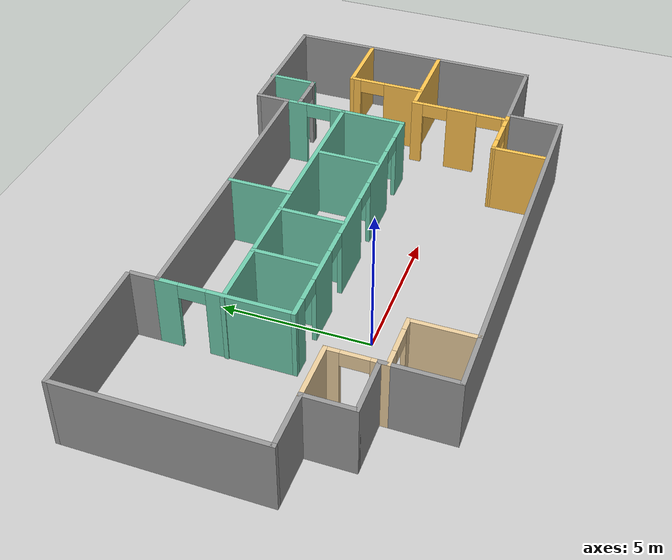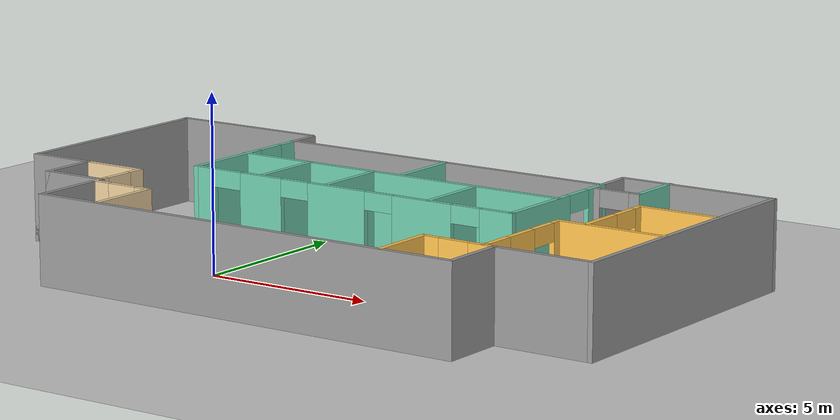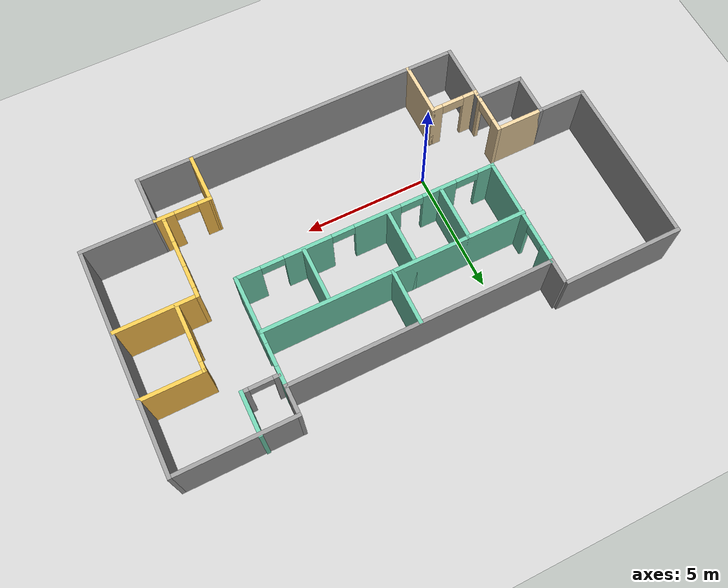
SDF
<sdf version="1.7">
 <world name="default">
  <model name="ground_plane">
   <static>1</static>
   <link name="link">
    <collision name="collision">
     <geometry><plane><normal>0 0 1</normal><size>100 100</size></plane></geometry>
     <surface>
      <contact><collide_bitmask>65535</collide_bitmask></contact>
      <friction><ode><mu>100</mu><mu2>50</mu2></ode></friction>
     </surface>
    </collision>
    <visual name="visual">
     <cast_shadows>0</cast_shadows>
     <geometry><plane><normal>0 0 1</normal><size>100 100</size></plane></geometry>
     <material>
      <script><uri>file://media/materials/scripts/gazebo.material</uri><name>Gazebo/Grey</name></script>
     </material>
    </visual>
   </link>
  </model>
  <model name="Building">
   <pose>3.19653 1.84983 0 0 -0 0</pose>
   <link name="Wall_0">
    <collision name="Wall_0_Collision">
     <geometry><box><size>4.75 0.15 2.5</size></box></geometry>
     <pose>0 0 1.25 0 -0 0</pose>
    </collision>
    <visual name="Wall_0_Visual">
     <pose>0 0 1.25 0 -0 0</pose>
     <geometry><box><size>4.75 0.15 2.5</size></box></geometry>
     <material>
      <script><uri>file://media/materials/scripts/gazebo.material</uri><name>Gazebo/Grey</name></script>
      <ambient>1 1 1 1</ambient>
     </material>
     <meta><layer>0</layer></meta>
    </visual>
    <pose>-7.525 5.17858 0 0 -0 3.14159</pose>
   </link>
   <link name="Wall_1">
    <collision name="Wall_1_Collision">
     <geometry><box><size>6.75 0.15 2.5</size></box></geometry>
     <pose>0 0 1.25 0 -0 0</pose>
    </collision>
    <visual name="Wall_1_Visual">
     <pose>0 0 1.25 0 -0 0</pose>
     <geometry><box><size>6.75 0.15 2.5</size></box></geometry>
     <material>
      <script><uri>file://media/materials/scripts/gazebo.material</uri><name>Gazebo/Grey</name></script>
      <ambient>1 1 1 1</ambient>
     </material>
     <meta><layer>0</layer></meta>
    </visual>
    <pose>-9.825 1.87858 0 0 -0 -1.5708</pose>
   </link>
   <link name="Wall_10">
    <collision name="Wall_10_Collision">
     <geometry><box><size>4.75 0.15 2.5</size></box></geometry>
     <pose>0 0 1.25 0 -0 0</pose>
    </collision>
    <visual name="Wall_10_Visual">
     <pose>0 0 1.25 0 -0 0</pose>
     <geometry><box><size>4.75 0.15 2.5</size></box></geometry>
     <material>
      <script><uri>file://media/materials/scripts/gazebo.material</uri><name>Gazebo/Grey</name></script>
      <ambient>1 1 1 1</ambient>
     </material>
     <meta><layer>0</layer></meta>
    </visual>
    <pose>7.525 5.32857 0 0 -0 3.14159</pose>
   </link>
   <link name="Wall_11">
    <collision name="Wall_11_Collision">
     <geometry><box><size>1.25 0.15 2.5</size></box></geometry>
     <pose>0 0 1.25 0 -0 0</pose>
    </collision>
    <visual name="Wall_11_Visual">
     <pose>0 0 1.25 0 -0 0</pose>
     <geometry><box><size>1.25 0.15 2.5</size></box></geometry>
     <material>
      <script><uri>file://media/materials/scripts/gazebo.material</uri><name>Gazebo/Grey</name></script>
      <ambient>1 1 1 1</ambient>
     </material>
     <meta><layer>0</layer></meta>
    </visual>
    <pose>5.225 4.77858 0 0 -0 -1.5708</pose>
   </link>
   <link name="Wall_15">
    <collision name="Wall_15_Collision">
     <geometry><box><size>10.5 0.15 2.5</size></box></geometry>
     <pose>0 0 1.25 0 -0 0</pose>
    </collision>
    <visual name="Wall_15_Visual">
     <pose>0 0 1.25 0 -0 0</pose>
     <geometry><box><size>10.5 0.15 2.5</size></box></geometry>
     <material>
      <script><uri>file://media/materials/scripts/gazebo.material</uri><name>Gazebo/Grey</name></script>
      <ambient>1 1 1 1</ambient>
     </material>
     <meta><layer>0</layer></meta>
    </visual>
    <pose>0.05 4.22858 0 0 -0 3.14159</pose>
   </link>
   <link name="Wall_18">
    <collision name="Wall_18_Collision">
     <geometry><box><size>2 0.15 2.5</size></box></geometry>
     <pose>0 0 1.25 0 -0 0</pose>
    </collision>
    <visual name="Wall_18_Visual">
     <pose>0 0 1.25 0 -0 0</pose>
     <geometry><box><size>2 0.15 2.5</size></box></geometry>
     <material>
      <script><uri>file://media/materials/scripts/gazebo.material</uri><name>Gazebo/Grey</name></script>
      <ambient>0.921569 0.807843 0.615686 1</ambient>
     </material>
     <meta><layer>0</layer></meta>
    </visual>
    <pose>-7.05 -1.42142 0 0 -0 0</pose>
   </link>
   <link name="Wall_19">
    <pose>-6.125 -2.34642 0 0 -0 -1.5708</pose>
    <visual name="Wall_19_Visual_0">
     <pose>-0.740197 0 1.25 0 -0 0</pose>
     <geometry><box><size>0.519606 0.15 2.5</size></box></geometry>
     <material>
      <script><uri>file://media/materials/scripts/gazebo.material</uri><name>Gazebo/Grey</name></script>
      <ambient>0.921569 0.807843 0.615686 1</ambient>
     </material>
     <meta><layer>0</layer></meta>
    </visual>
    <collision name="Wall_19_Collision_0">
     <geometry><box><size>0.519606 0.15 2.5</size></box></geometry>
     <pose>-0.740197 0 1.25 0 -0 0</pose>
    </collision>
    <visual name="Wall_19_Visual_1">
     <pose>0.709803 0 1.25 0 -0 0</pose>
     <geometry><box><size>0.580394 0.15 2.5</size></box></geometry>
     <material>
      <script><uri>file://media/materials/scripts/gazebo.material</uri><name>Gazebo/Grey</name></script>
      <ambient>0.921569 0.807843 0.615686 1</ambient>
     </material>
     <meta><layer>0</layer></meta>
    </visual>
    <collision name="Wall_19_Collision_1">
     <geometry><box><size>0.580394 0.15 2.5</size></box></geometry>
     <pose>0.709803 0 1.25 0 -0 0</pose>
    </collision>
    <visual name="Wall_19_Visual_2">
     <pose>-0.030394 0 2.25 0 -0 0</pose>
     <geometry><box><size>0.9 0.15 0.5</size></box></geometry>
     <material>
      <script><uri>file://media/materials/scripts/gazebo.material</uri><name>Gazebo/Grey</name></script>
      <ambient>0.921569 0.807843 0.615686 1</ambient>
     </material>
     <meta><layer>0</layer></meta>
    </visual>
    <collision name="Wall_19_Collision_2">
     <geometry><box><size>0.9 0.15 0.5</size></box></geometry>
     <pose>-0.030394 0 2.25 0 -0 0</pose>
    </collision>
   </link>
   <link name="Wall_2">
    <collision name="Wall_2_Collision">
     <geometry><box><size>2 0.15 2.5</size></box></geometry>
     <pose>0 0 1.25 0 -0 0</pose>
    </collision>
    <visual name="Wall_2_Visual">
     <pose>0 0 1.25 0 -0 0</pose>
     <geometry><box><size>2 0.15 2.5</size></box></geometry>
     <material>
      <script><uri>file://media/materials/scripts/gazebo.material</uri><name>Gazebo/Grey</name></script>
      <ambient>1 1 1 1</ambient>
     </material>
     <meta><layer>0</layer></meta>
    </visual>
    <pose>-8.9 -1.42142 0 0 -0 0</pose>
   </link>
   <link name="Wall_20">
    <pose>-5.2 -3.27142 0 0 -0 0</pose>
    <visual name="Wall_20_Visual_0">
     <pose>-0.691615 0 1.25 0 -0 0</pose>
     <geometry><box><size>0.616771 0.15 2.5</size></box></geometry>
     <material>
      <script><uri>file://media/materials/scripts/gazebo.material</uri><name>Gazebo/Grey</name></script>
      <ambient>0.921569 0.807843 0.615686 1</ambient>
     </material>
     <meta><layer>0</layer></meta>
    </visual>
    <collision name="Wall_20_Collision_0">
     <geometry><box><size>0.616771 0.15 2.5</size></box></geometry>
     <pose>-0.691615 0 1.25 0 -0 0</pose>
    </collision>
    <visual name="Wall_20_Visual_1">
     <pose>0.758385 0 1.25 0 -0 0</pose>
     <geometry><box><size>0.483229 0.15 2.5</size></box></geometry>
     <material>
      <script><uri>file://media/materials/scripts/gazebo.material</uri><name>Gazebo/Grey</name></script>
      <ambient>0.921569 0.807843 0.615686 1</ambient>
     </material>
     <meta><layer>0</layer></meta>
    </visual>
    <collision name="Wall_20_Collision_1">
     <geometry><box><size>0.483229 0.15 2.5</size></box></geometry>
     <pose>0.758385 0 1.25 0 -0 0</pose>
    </collision>
    <visual name="Wall_20_Visual_2">
     <pose>0.066771 0 2.25 0 -0 0</pose>
     <geometry><box><size>0.9 0.15 0.5</size></box></geometry>
     <material>
      <script><uri>file://media/materials/scripts/gazebo.material</uri><name>Gazebo/Grey</name></script>
      <ambient>0.921569 0.807843 0.615686 1</ambient>
     </material>
     <meta><layer>0</layer></meta>
    </visual>
    <collision name="Wall_20_Collision_2">
     <geometry><box><size>0.9 0.15 0.5</size></box></geometry>
     <pose>0.066771 0 2.25 0 -0 0</pose>
    </collision>
   </link>
   <link name="Wall_21">
    <collision name="Wall_21_Collision">
     <geometry><box><size>2.25 0.15 2.5</size></box></geometry>
     <pose>0 0 1.25 0 -0 0</pose>
    </collision>
    <visual name="Wall_21_Visual">
     <pose>0 0 1.25 0 -0 0</pose>
     <geometry><box><size>2.25 0.15 2.5</size></box></geometry>
     <material>
      <script><uri>file://media/materials/scripts/gazebo.material</uri><name>Gazebo/Grey</name></script>
      <ambient>0.921569 0.807843 0.615686 1</ambient>
     </material>
     <meta><layer>0</layer></meta>
    </visual>
    <pose>-4.275 -4.32142 0 0 -0 -1.5708</pose>
   </link>
   <link name="Wall_23">
    <collision name="Wall_23_Collision">
     <geometry><box><size>2 0.15 2.5</size></box></geometry>
     <pose>0 0 1.25 0 -0 0</pose>
    </collision>
    <visual name="Wall_23_Visual">
     <pose>0 0 1.25 0 -0 0</pose>
     <geometry><box><size>2 0.15 2.5</size></box></geometry>
     <material>
      <script><uri>file://media/materials/scripts/gazebo.material</uri><name>Gazebo/Grey</name></script>
      <ambient>1 0.764706 0.305882 1</ambient>
     </material>
     <meta><layer>0</layer></meta>
    </visual>
    <pose>4.83918 -4.41946 0 0 -0 1.5708</pose>
   </link>
   <link name="Wall_24">
    <pose>5.90709 -3.50794 0 0 -0 -0.012623</pose>
    <visual name="Wall_24_Visual_0">
     <pose>-0.856676 0 1.25 0 -0 0</pose>
     <geometry><box><size>0.572633 0.15 2.5</size></box></geometry>
     <material>
      <script><uri>file://media/materials/scripts/gazebo.material</uri><name>Gazebo/Grey</name></script>
      <ambient>1 0.764706 0.305882 1</ambient>
     </material>
     <meta><layer>0</layer></meta>
    </visual>
    <collision name="Wall_24_Collision_0">
     <geometry><box><size>0.572633 0.15 2.5</size></box></geometry>
     <pose>-0.856676 0 1.25 0 -0 0</pose>
    </collision>
    <visual name="Wall_24_Visual_1">
     <pose>0.736317 0 1.25 0 -0 0</pose>
     <geometry><box><size>0.813352 0.15 2.5</size></box></geometry>
     <material>
      <script><uri>file://media/materials/scripts/gazebo.material</uri><name>Gazebo/Grey</name></script>
      <ambient>1 0.764706 0.305882 1</ambient>
     </material>
     <meta><layer>0</layer></meta>
    </visual>
    <collision name="Wall_24_Collision_1">
     <geometry><box><size>0.813352 0.15 2.5</size></box></geometry>
     <pose>0.736317 0 1.25 0 -0 0</pose>
    </collision>
    <visual name="Wall_24_Visual_2">
     <pose>-0.120359 0 2.25 0 -0 0</pose>
     <geometry><box><size>0.9 0.15 0.5</size></box></geometry>
     <material>
      <script><uri>file://media/materials/scripts/gazebo.material</uri><name>Gazebo/Grey</name></script>
      <ambient>1 0.764706 0.305882 1</ambient>
     </material>
     <meta><layer>0</layer></meta>
    </visual>
    <collision name="Wall_24_Collision_2">
     <geometry><box><size>0.9 0.15 0.5</size></box></geometry>
     <pose>-0.120359 0 2.25 0 -0 0</pose>
    </collision>
   </link>
   <link name="Wall_26">
    <pose>6.6746 -1.80346 0 0 -0 1.5708</pose>
    <visual name="Wall_26_Visual_0">
     <pose>-1.64689 0 1.25 0 -0 0</pose>
     <geometry><box><size>0.206214 0.15 2.5</size></box></geometry>
     <material>
      <script><uri>file://media/materials/scripts/gazebo.material</uri><name>Gazebo/Grey</name></script>
      <ambient>1 0.764706 0.305882 1</ambient>
     </material>
     <meta><layer>0</layer></meta>
    </visual>
    <collision name="Wall_26_Collision_0">
     <geometry><box><size>0.206214 0.15 2.5</size></box></geometry>
     <pose>-1.64689 0 1.25 0 -0 0</pose>
    </collision>
    <visual name="Wall_26_Visual_1">
     <pose>-0.099603 0 1.25 0 -0 0</pose>
     <geometry><box><size>1.08837 0.15 2.5</size></box></geometry>
     <material>
      <script><uri>file://media/materials/scripts/gazebo.material</uri><name>Gazebo/Grey</name></script>
      <ambient>1 0.764706 0.305882 1</ambient>
     </material>
     <meta><layer>0</layer></meta>
    </visual>
    <collision name="Wall_26_Collision_1">
     <geometry><box><size>1.08837 0.15 2.5</size></box></geometry>
     <pose>-0.099603 0 1.25 0 -0 0</pose>
    </collision>
    <visual name="Wall_26_Visual_2">
     <pose>1.54729 0 1.25 0 -0 0</pose>
     <geometry><box><size>0.405421 0.15 2.5</size></box></geometry>
     <material>
      <script><uri>file://media/materials/scripts/gazebo.material</uri><name>Gazebo/Grey</name></script>
      <ambient>1 0.764706 0.305882 1</ambient>
     </material>
     <meta><layer>0</layer></meta>
    </visual>
    <collision name="Wall_26_Collision_2">
     <geometry><box><size>0.405421 0.15 2.5</size></box></geometry>
     <pose>1.54729 0 1.25 0 -0 0</pose>
    </collision>
    <visual name="Wall_26_Visual_3">
     <pose>-1.09379 0 2.25 0 -0 0</pose>
     <geometry><box><size>0.9 0.15 0.5</size></box></geometry>
     <material>
      <script><uri>file://media/materials/scripts/gazebo.material</uri><name>Gazebo/Grey</name></script>
      <ambient>1 0.764706 0.305882 1</ambient>
     </material>
     <meta><layer>0</layer></meta>
    </visual>
    <collision name="Wall_26_Collision_3">
     <geometry><box><size>0.9 0.15 0.5</size></box></geometry>
     <pose>-1.09379 0 2.25 0 -0 0</pose>
    </collision>
    <visual name="Wall_26_Visual_4">
     <pose>0.894579 0 2.25 0 -0 0</pose>
     <geometry><box><size>0.9 0.15 0.5</size></box></geometry>
     <material>
      <script><uri>file://media/materials/scripts/gazebo.material</uri><name>Gazebo/Grey</name></script>
      <ambient>1 0.764706 0.305882 1</ambient>
     </material>
     <meta><layer>0</layer></meta>
    </visual>
    <collision name="Wall_26_Collision_4">
     <geometry><box><size>0.9 0.15 0.5</size></box></geometry>
     <pose>0.894579 0 2.25 0 -0 0</pose>
    </collision>
   </link>
   <link name="Wall_27">
    <collision name="Wall_27_Collision">
     <geometry><box><size>3.25 0.15 2.5</size></box></geometry>
     <pose>0 0 1.25 0 -0 0</pose>
    </collision>
    <visual name="Wall_27_Visual">
     <pose>0 0 1.25 0 -0 0</pose>
     <geometry><box><size>3.25 0.15 2.5</size></box></geometry>
     <material>
      <script><uri>file://media/materials/scripts/gazebo.material</uri><name>Gazebo/Grey</name></script>
      <ambient>1 0.764706 0.305882 1</ambient>
     </material>
     <meta><layer>0</layer></meta>
    </visual>
    <pose>8.2246 -0.12846 0 0 -0 0</pose>
   </link>
   <link name="Wall_29">
    <pose>7.46995 1.21706 0 0 -0 1.5708</pose>
    <visual name="Wall_29_Visual_0">
     <pose>-0.660088 0 1.25 0 -0 0</pose>
     <geometry><box><size>1.42982 0.15 2.5</size></box></geometry>
     <material>
      <script><uri>file://media/materials/scripts/gazebo.material</uri><name>Gazebo/Grey</name></script>
      <ambient>1 0.764706 0.305882 1</ambient>
     </material>
     <meta><layer>0</layer></meta>
    </visual>
    <collision name="Wall_29_Collision_0">
     <geometry><box><size>1.42982 0.15 2.5</size></box></geometry>
     <pose>-0.660088 0 1.25 0 -0 0</pose>
    </collision>
    <visual name="Wall_29_Visual_1">
     <pose>1.16491 0 1.25 0 -0 0</pose>
     <geometry><box><size>0.420177 0.15 2.5</size></box></geometry>
     <material>
      <script><uri>file://media/materials/scripts/gazebo.material</uri><name>Gazebo/Grey</name></script>
      <ambient>1 0.764706 0.305882 1</ambient>
     </material>
     <meta><layer>0</layer></meta>
    </visual>
    <collision name="Wall_29_Collision_1">
     <geometry><box><size>0.420177 0.15 2.5</size></box></geometry>
     <pose>1.16491 0 1.25 0 -0 0</pose>
    </collision>
    <visual name="Wall_29_Visual_2">
     <pose>0.504823 0 2.25 0 -0 0</pose>
     <geometry><box><size>0.9 0.15 0.5</size></box></geometry>
     <material>
      <script><uri>file://media/materials/scripts/gazebo.material</uri><name>Gazebo/Grey</name></script>
      <ambient>1 0.764706 0.305882 1</ambient>
     </material>
     <meta><layer>0</layer></meta>
    </visual>
    <collision name="Wall_29_Collision_2">
     <geometry><box><size>0.9 0.15 0.5</size></box></geometry>
     <pose>0.504823 0 2.25 0 -0 0</pose>
    </collision>
   </link>
   <link name="Wall_3">
    <collision name="Wall_3_Collision">
     <geometry><box><size>1.75 0.15 2.5</size></box></geometry>
     <pose>0 0 1.25 0 -0 0</pose>
    </collision>
    <visual name="Wall_3_Visual">
     <pose>0 0 1.25 0 -0 0</pose>
     <geometry><box><size>1.75 0.15 2.5</size></box></geometry>
     <material>
      <script><uri>file://media/materials/scripts/gazebo.material</uri><name>Gazebo/Grey</name></script>
      <ambient>1 1 1 1</ambient>
     </material>
     <meta><layer>0</layer></meta>
    </visual>
    <pose>-7.975 -2.22142 0 0 -0 -1.5708</pose>
   </link>
   <link name="Wall_30">
    <collision name="Wall_30_Collision">
     <geometry><box><size>2.5 0.15 2.5</size></box></geometry>
     <pose>0 0 1.25 0 -0 0</pose>
    </collision>
    <visual name="Wall_30_Visual">
     <pose>0 0 1.25 0 -0 0</pose>
     <geometry><box><size>2.5 0.15 2.5</size></box></geometry>
     <material>
      <script><uri>file://media/materials/scripts/gazebo.material</uri><name>Gazebo/Grey</name></script>
      <ambient>1 0.764706 0.305882 1</ambient>
     </material>
     <meta><layer>0</layer></meta>
    </visual>
    <pose>8.64494 2.51706 0 0 -0 0</pose>
   </link>
   <link name="Wall_32">
    <pose>5.225 2.05357 0 0 -0 -1.5708</pose>
    <visual name="Wall_32_Visual_0">
     <pose>-1.82655 0 1.25 0 -0 0</pose>
     <geometry><box><size>0.846906 0.15 2.5</size></box></geometry>
     <material>
      <script><uri>file://media/materials/scripts/gazebo.material</uri><name>Gazebo/Grey</name></script>
      <ambient>0.435294 0.796078 0.67451 1</ambient>
     </material>
     <meta><layer>0</layer></meta>
    </visual>
    <collision name="Wall_32_Collision_0">
     <geometry><box><size>0.846906 0.15 2.5</size></box></geometry>
     <pose>-1.82655 0 1.25 0 -0 0</pose>
    </collision>
    <visual name="Wall_32_Visual_1">
     <pose>0.873453 0 1.25 0 -0 0</pose>
     <geometry><box><size>2.75309 0.15 2.5</size></box></geometry>
     <material>
      <script><uri>file://media/materials/scripts/gazebo.material</uri><name>Gazebo/Grey</name></script>
      <ambient>0.435294 0.796078 0.67451 1</ambient>
     </material>
     <meta><layer>0</layer></meta>
    </visual>
    <collision name="Wall_32_Collision_1">
     <geometry><box><size>2.75309 0.15 2.5</size></box></geometry>
     <pose>0.873453 0 1.25 0 -0 0</pose>
    </collision>
    <visual name="Wall_32_Visual_2">
     <pose>-0.953094 0 2.25 0 -0 0</pose>
     <geometry><box><size>0.9 0.15 0.5</size></box></geometry>
     <material>
      <script><uri>file://media/materials/scripts/gazebo.material</uri><name>Gazebo/Grey</name></script>
      <ambient>0.435294 0.796078 0.67451 1</ambient>
     </material>
     <meta><layer>0</layer></meta>
    </visual>
    <collision name="Wall_32_Collision_2">
     <geometry><box><size>0.9 0.15 0.5</size></box></geometry>
     <pose>-0.953094 0 2.25 0 -0 0</pose>
    </collision>
   </link>
   <link name="Wall_33">
    <pose>0.05 -0.121425 0 0 -0 3.14159</pose>
    <visual name="Wall_33_Visual_0">
     <pose>-4.73985 0 1.25 0 -0 0</pose>
     <geometry><box><size>1.02029 0.15 2.5</size></box></geometry>
     <material>
      <script><uri>file://media/materials/scripts/gazebo.material</uri><name>Gazebo/Grey</name></script>
      <ambient>0.435294 0.796078 0.67451 1</ambient>
     </material>
     <meta><layer>0</layer></meta>
    </visual>
    <collision name="Wall_33_Collision_0">
     <geometry><box><size>1.02029 0.15 2.5</size></box></geometry>
     <pose>-4.73985 0 1.25 0 -0 0</pose>
    </collision>
    <visual name="Wall_33_Visual_1">
     <pose>-2.38785 0 1.25 0 -0 0</pose>
     <geometry><box><size>1.88371 0.15 2.5</size></box></geometry>
     <material>
      <script><uri>file://media/materials/scripts/gazebo.material</uri><name>Gazebo/Grey</name></script>
      <ambient>0.435294 0.796078 0.67451 1</ambient>
     </material>
     <meta><layer>0</layer></meta>
    </visual>
    <collision name="Wall_33_Collision_1">
     <geometry><box><size>1.88371 0.15 2.5</size></box></geometry>
     <pose>-2.38785 0 1.25 0 -0 0</pose>
    </collision>
    <visual name="Wall_33_Visual_2">
     <pose>0.395859 0 1.25 0 -0 0</pose>
     <geometry><box><size>1.88371 0.15 2.5</size></box></geometry>
     <material>
      <script><uri>file://media/materials/scripts/gazebo.material</uri><name>Gazebo/Grey</name></script>
      <ambient>0.435294 0.796078 0.67451 1</ambient>
     </material>
     <meta><layer>0</layer></meta>
    </visual>
    <collision name="Wall_33_Collision_2">
     <geometry><box><size>1.88371 0.15 2.5</size></box></geometry>
     <pose>0.395859 0 1.25 0 -0 0</pose>
    </collision>
    <visual name="Wall_33_Visual_3">
     <pose>2.93485 0 1.25 0 -0 0</pose>
     <geometry><box><size>1.39427 0.15 2.5</size></box></geometry>
     <material>
      <script><uri>file://media/materials/scripts/gazebo.material</uri><name>Gazebo/Grey</name></script>
      <ambient>0.435294 0.796078 0.67451 1</ambient>
     </material>
     <meta><layer>0</layer></meta>
    </visual>
    <collision name="Wall_33_Collision_3">
     <geometry><box><size>1.39427 0.15 2.5</size></box></geometry>
     <pose>2.93485 0 1.25 0 -0 0</pose>
    </collision>
    <visual name="Wall_33_Visual_4">
     <pose>4.89099 0 1.25 0 -0 0</pose>
     <geometry><box><size>0.718019 0.15 2.5</size></box></geometry>
     <material>
      <script><uri>file://media/materials/scripts/gazebo.material</uri><name>Gazebo/Grey</name></script>
      <ambient>0.435294 0.796078 0.67451 1</ambient>
     </material>
     <meta><layer>0</layer></meta>
    </visual>
    <collision name="Wall_33_Collision_4">
     <geometry><box><size>0.718019 0.15 2.5</size></box></geometry>
     <pose>4.89099 0 1.25 0 -0 0</pose>
    </collision>
    <visual name="Wall_33_Visual_5">
     <pose>-3.77971 0 2.25 0 -0 0</pose>
     <geometry><box><size>0.9 0.15 0.5</size></box></geometry>
     <material>
      <script><uri>file://media/materials/scripts/gazebo.material</uri><name>Gazebo/Grey</name></script>
      <ambient>0.435294 0.796078 0.67451 1</ambient>
     </material>
     <meta><layer>0</layer></meta>
    </visual>
    <collision name="Wall_33_Collision_5">
     <geometry><box><size>0.9 0.15 0.5</size></box></geometry>
     <pose>-3.77971 0 2.25 0 -0 0</pose>
    </collision>
    <visual name="Wall_33_Visual_6">
     <pose>-0.995997 0 2.25 0 -0 0</pose>
     <geometry><box><size>0.9 0.15 0.5</size></box></geometry>
     <material>
      <script><uri>file://media/materials/scripts/gazebo.material</uri><name>Gazebo/Grey</name></script>
      <ambient>0.435294 0.796078 0.67451 1</ambient>
     </material>
     <meta><layer>0</layer></meta>
    </visual>
    <collision name="Wall_33_Collision_6">
     <geometry><box><size>0.9 0.15 0.5</size></box></geometry>
     <pose>-0.995997 0 2.25 0 -0 0</pose>
    </collision>
    <visual name="Wall_33_Visual_7">
     <pose>1.78771 0 2.25 0 -0 0</pose>
     <geometry><box><size>0.9 0.15 0.5</size></box></geometry>
     <material>
      <script><uri>file://media/materials/scripts/gazebo.material</uri><name>Gazebo/Grey</name></script>
      <ambient>0.435294 0.796078 0.67451 1</ambient>
     </material>
     <meta><layer>0</layer></meta>
    </visual>
    <collision name="Wall_33_Collision_7">
     <geometry><box><size>0.9 0.15 0.5</size></box></geometry>
     <pose>1.78771 0 2.25 0 -0 0</pose>
    </collision>
    <visual name="Wall_33_Visual_8">
     <pose>4.08198 0 2.25 0 -0 0</pose>
     <geometry><box><size>0.9 0.15 0.5</size></box></geometry>
     <material>
      <script><uri>file://media/materials/scripts/gazebo.material</uri><name>Gazebo/Grey</name></script>
      <ambient>0.435294 0.796078 0.67451 1</ambient>
     </material>
     <meta><layer>0</layer></meta>
    </visual>
    <collision name="Wall_33_Collision_8">
     <geometry><box><size>0.9 0.15 0.5</size></box></geometry>
     <pose>4.08198 0 2.25 0 -0 0</pose>
    </collision>
   </link>
   <link name="Wall_34">
    <pose>-5.125 2.05357 0 0 -0 1.5708</pose>
    <visual name="Wall_34_Visual_0">
     <pose>-0.827568 0 1.25 0 -0 0</pose>
     <geometry><box><size>2.84486 0.15 2.5</size></box></geometry>
     <material>
      <script><uri>file://media/materials/scripts/gazebo.material</uri><name>Gazebo/Grey</name></script>
      <ambient>0.435294 0.796078 0.67451 1</ambient>
     </material>
     <meta><layer>0</layer></meta>
    </visual>
    <collision name="Wall_34_Collision_0">
     <geometry><box><size>2.84486 0.15 2.5</size></box></geometry>
     <pose>-0.827568 0 1.25 0 -0 0</pose>
    </collision>
    <visual name="Wall_34_Visual_1">
     <pose>1.87243 0 1.25 0 -0 0</pose>
     <geometry><box><size>0.755136 0.15 2.5</size></box></geometry>
     <material>
      <script><uri>file://media/materials/scripts/gazebo.material</uri><name>Gazebo/Grey</name></script>
      <ambient>0.435294 0.796078 0.67451 1</ambient>
     </material>
     <meta><layer>0</layer></meta>
    </visual>
    <collision name="Wall_34_Collision_1">
     <geometry><box><size>0.755136 0.15 2.5</size></box></geometry>
     <pose>1.87243 0 1.25 0 -0 0</pose>
    </collision>
    <visual name="Wall_34_Visual_2">
     <pose>1.04486 0 2.25 0 -0 0</pose>
     <geometry><box><size>0.9 0.15 0.5</size></box></geometry>
     <material>
      <script><uri>file://media/materials/scripts/gazebo.material</uri><name>Gazebo/Grey</name></script>
      <ambient>0.435294 0.796078 0.67451 1</ambient>
     </material>
     <meta><layer>0</layer></meta>
    </visual>
    <collision name="Wall_34_Collision_2">
     <geometry><box><size>0.9 0.15 0.5</size></box></geometry>
     <pose>1.04486 0 2.25 0 -0 0</pose>
    </collision>
   </link>
   <link name="Wall_36">
    <collision name="Wall_36_Collision">
     <geometry><box><size>1 0.15 2.5</size></box></geometry>
     <pose>0 0 1.25 0 -0 0</pose>
    </collision>
    <visual name="Wall_36_Visual">
     <pose>0 0 1.25 0 -0 0</pose>
     <geometry><box><size>1 0.15 2.5</size></box></geometry>
     <material>
      <script><uri>file://media/materials/scripts/gazebo.material</uri><name>Gazebo/Grey</name></script>
      <ambient>1 1 1 1</ambient>
     </material>
     <meta><layer>0</layer></meta>
    </visual>
    <pose>-5.125 4.65358 0 0 -0 1.5708</pose>
   </link>
   <link name="Wall_38">
    <collision name="Wall_38_Collision">
     <geometry><box><size>10.5 0.15 2.5</size></box></geometry>
     <pose>0 0 1.25 0 -0 0</pose>
    </collision>
    <visual name="Wall_38_Visual">
     <pose>0 0 1.25 0 -0 0</pose>
     <geometry><box><size>10.5 0.15 2.5</size></box></geometry>
     <material>
      <script><uri>file://media/materials/scripts/gazebo.material</uri><name>Gazebo/Grey</name></script>
      <ambient>0.435294 0.796078 0.67451 1</ambient>
     </material>
     <meta><layer>0</layer></meta>
    </visual>
    <pose>0.011181 2.08896 0 0 -0 0</pose>
   </link>
   <link name="Wall_4">
    <collision name="Wall_4_Collision">
     <geometry><box><size>2 0.15 2.5</size></box></geometry>
     <pose>0 0 1.25 0 -0 0</pose>
    </collision>
    <visual name="Wall_4_Visual">
     <pose>0 0 1.25 0 -0 0</pose>
     <geometry><box><size>2 0.15 2.5</size></box></geometry>
     <material>
      <script><uri>file://media/materials/scripts/gazebo.material</uri><name>Gazebo/Grey</name></script>
      <ambient>1 1 1 1</ambient>
     </material>
     <meta><layer>0</layer></meta>
    </visual>
    <pose>-7.05 -3.02142 0 0 -0 0</pose>
   </link>
   <link name="Wall_40">
    <collision name="Wall_40_Collision">
     <geometry><box><size>2.25 0.15 2.5</size></box></geometry>
     <pose>0 0 1.25 0 -0 0</pose>
    </collision>
    <visual name="Wall_40_Visual">
     <pose>0 0 1.25 0 -0 0</pose>
     <geometry><box><size>2.25 0.15 2.5</size></box></geometry>
     <material>
      <script><uri>file://media/materials/scripts/gazebo.material</uri><name>Gazebo/Grey</name></script>
      <ambient>0.435294 0.796078 0.67451 1</ambient>
     </material>
     <meta><layer>0</layer></meta>
    </visual>
    <pose>-2.93073 1.03896 0 0 -0 -1.5708</pose>
   </link>
   <link name="Wall_42">
    <collision name="Wall_42_Collision">
     <geometry><box><size>2.25 0.15 2.5</size></box></geometry>
     <pose>0 0 1.25 0 -0 0</pose>
    </collision>
    <visual name="Wall_42_Visual">
     <pose>0 0 1.25 0 -0 0</pose>
     <geometry><box><size>2.25 0.15 2.5</size></box></geometry>
     <material>
      <script><uri>file://media/materials/scripts/gazebo.material</uri><name>Gazebo/Grey</name></script>
      <ambient>0.435294 0.796078 0.67451 1</ambient>
     </material>
     <meta><layer>0</layer></meta>
    </visual>
    <pose>-0.758826 1.03896 0 0 -0 -1.5708</pose>
   </link>
   <link name="Wall_46">
    <collision name="Wall_46_Collision">
     <geometry><box><size>2.25 0.15 2.5</size></box></geometry>
     <pose>0 0 1.25 0 -0 0</pose>
    </collision>
    <visual name="Wall_46_Visual">
     <pose>0 0 1.25 0 -0 0</pose>
     <geometry><box><size>2.25 0.15 2.5</size></box></geometry>
     <material>
      <script><uri>file://media/materials/scripts/gazebo.material</uri><name>Gazebo/Grey</name></script>
      <ambient>0.435294 0.796078 0.67451 1</ambient>
     </material>
     <meta><layer>0</layer></meta>
    </visual>
    <pose>2.6061 1.00837 0 0 -0 -1.5708</pose>
   </link>
   <link name="Wall_48">
    <collision name="Wall_48_Collision">
     <geometry><box><size>2.25 0.15 2.5</size></box></geometry>
     <pose>0 0 1.25 0 -0 0</pose>
    </collision>
    <visual name="Wall_48_Visual">
     <pose>0 0 1.25 0 -0 0</pose>
     <geometry><box><size>2.25 0.15 2.5</size></box></geometry>
     <material>
      <script><uri>file://media/materials/scripts/gazebo.material</uri><name>Gazebo/Grey</name></script>
      <ambient>0.435294 0.796078 0.67451 1</ambient>
     </material>
     <meta><layer>0</layer></meta>
    </visual>
    <pose>0.12829 3.14969 0 0 -0 -1.5708</pose>
   </link>
   <link name="Wall_5">
    <collision name="Wall_5_Collision">
     <geometry><box><size>2.5 0.15 2.5</size></box></geometry>
     <pose>0 0 1.25 0 -0 0</pose>
    </collision>
    <visual name="Wall_5_Visual">
     <pose>0 0 1.25 0 -0 0</pose>
     <geometry><box><size>2.5 0.15 2.5</size></box></geometry>
     <material>
      <script><uri>file://media/materials/scripts/gazebo.material</uri><name>Gazebo/Grey</name></script>
      <ambient>1 1 1 1</ambient>
     </material>
     <meta><layer>0</layer></meta>
    </visual>
    <pose>-6.125 -4.19642 0 0 -0 -1.5708</pose>
   </link>
   <link name="Wall_50">
    <pose>5.97304 3.77142 0 0 -0 0</pose>
    <visual name="Wall_50_Visual_0">
     <pose>-0.616303 0 1.25 0 -0 0</pose>
     <geometry><box><size>0.267395 0.15 2.5</size></box></geometry>
     <material>
      <script><uri>file://media/materials/scripts/gazebo.material</uri><name>Gazebo/Grey</name></script>
      <ambient>1 1 1 1</ambient>
     </material>
     <meta><layer>0</layer></meta>
    </visual>
    <collision name="Wall_50_Collision_0">
     <geometry><box><size>0.267395 0.15 2.5</size></box></geometry>
     <pose>-0.616303 0 1.25 0 -0 0</pose>
    </collision>
    <visual name="Wall_50_Visual_1">
     <pose>0.583697 0 1.25 0 -0 0</pose>
     <geometry><box><size>0.332605 0.15 2.5</size></box></geometry>
     <material>
      <script><uri>file://media/materials/scripts/gazebo.material</uri><name>Gazebo/Grey</name></script>
      <ambient>1 1 1 1</ambient>
     </material>
     <meta><layer>0</layer></meta>
    </visual>
    <collision name="Wall_50_Collision_1">
     <geometry><box><size>0.332605 0.15 2.5</size></box></geometry>
     <pose>0.583697 0 1.25 0 -0 0</pose>
    </collision>
    <visual name="Wall_50_Visual_2">
     <pose>-0.032605 0 2.25 0 -0 0</pose>
     <geometry><box><size>0.9 0.15 0.5</size></box></geometry>
     <material>
      <script><uri>file://media/materials/scripts/gazebo.material</uri><name>Gazebo/Grey</name></script>
      <ambient>1 1 1 1</ambient>
     </material>
     <meta><layer>0</layer></meta>
    </visual>
    <collision name="Wall_50_Collision_2">
     <geometry><box><size>0.9 0.15 0.5</size></box></geometry>
     <pose>-0.032605 0 2.25 0 -0 0</pose>
    </collision>
   </link>
   <link name="Wall_53">
    <collision name="Wall_53_Collision">
     <geometry><box><size>1.75 0.15 2.5</size></box></geometry>
     <pose>0 0 1.25 0 -0 0</pose>
    </collision>
    <visual name="Wall_53_Visual">
     <pose>0 0 1.25 0 -0 0</pose>
     <geometry><box><size>1.75 0.15 2.5</size></box></geometry>
     <material>
      <script><uri>file://media/materials/scripts/gazebo.material</uri><name>Gazebo/Grey</name></script>
      <ambient>0.435294 0.796078 0.67451 1</ambient>
     </material>
     <meta><layer>0</layer></meta>
    </visual>
    <pose>6.64804 4.57142 0 0 -0 1.5708</pose>
   </link>
   <link name="Wall_6">
    <collision name="Wall_6_Collision">
     <geometry><box><size>13.25 0.15 2.5</size></box></geometry>
     <pose>0 0 1.25 0 -0 0</pose>
    </collision>
    <visual name="Wall_6_Visual">
     <pose>0 0 1.25 0 -0 0</pose>
     <geometry><box><size>13.25 0.15 2.5</size></box></geometry>
     <material>
      <script><uri>file://media/materials/scripts/gazebo.material</uri><name>Gazebo/Grey</name></script>
      <ambient>1 1 1 1</ambient>
     </material>
     <meta><layer>0</layer></meta>
    </visual>
    <pose>0.425 -5.37143 0 0 -0 0</pose>
   </link>
   <link name="Wall_7">
    <collision name="Wall_7_Collision">
     <geometry><box><size>2 0.15 2.5</size></box></geometry>
     <pose>0 0 1.25 0 -0 0</pose>
    </collision>
    <visual name="Wall_7_Visual">
     <pose>0 0 1.25 0 -0 0</pose>
     <geometry><box><size>2 0.15 2.5</size></box></geometry>
     <material>
      <script><uri>file://media/materials/scripts/gazebo.material</uri><name>Gazebo/Grey</name></script>
      <ambient>1 1 1 1</ambient>
     </material>
     <meta><layer>0</layer></meta>
    </visual>
    <pose>6.975 -4.44642 0 0 -0 1.5708</pose>
   </link>
   <link name="Wall_8">
    <collision name="Wall_8_Collision">
     <geometry><box><size>3 0.15 2.5</size></box></geometry>
     <pose>0 0 1.25 0 -0 0</pose>
    </collision>
    <visual name="Wall_8_Visual">
     <pose>0 0 1.25 0 -0 0</pose>
     <geometry><box><size>3 0.15 2.5</size></box></geometry>
     <material>
      <script><uri>file://media/materials/scripts/gazebo.material</uri><name>Gazebo/Grey</name></script>
      <ambient>1 1 1 1</ambient>
     </material>
     <meta><layer>0</layer></meta>
    </visual>
    <pose>8.4 -3.52142 0 0 -0 0</pose>
   </link>
   <link name="Wall_9">
    <collision name="Wall_9_Collision">
     <geometry><box><size>9 0.15 2.5</size></box></geometry>
     <pose>0 0 1.25 0 -0 0</pose>
    </collision>
    <visual name="Wall_9_Visual">
     <pose>0 0 1.25 0 -0 0</pose>
     <geometry><box><size>9 0.15 2.5</size></box></geometry>
     <material>
      <script><uri>file://media/materials/scripts/gazebo.material</uri><name>Gazebo/Grey</name></script>
      <ambient>1 1 1 1</ambient>
     </material>
     <meta><layer>0</layer></meta>
    </visual>
    <pose>9.825 0.903575 0 0 -0 1.5708</pose>
   </link>
   <static>1</static>
  </model>
 </world>
</sdf>
